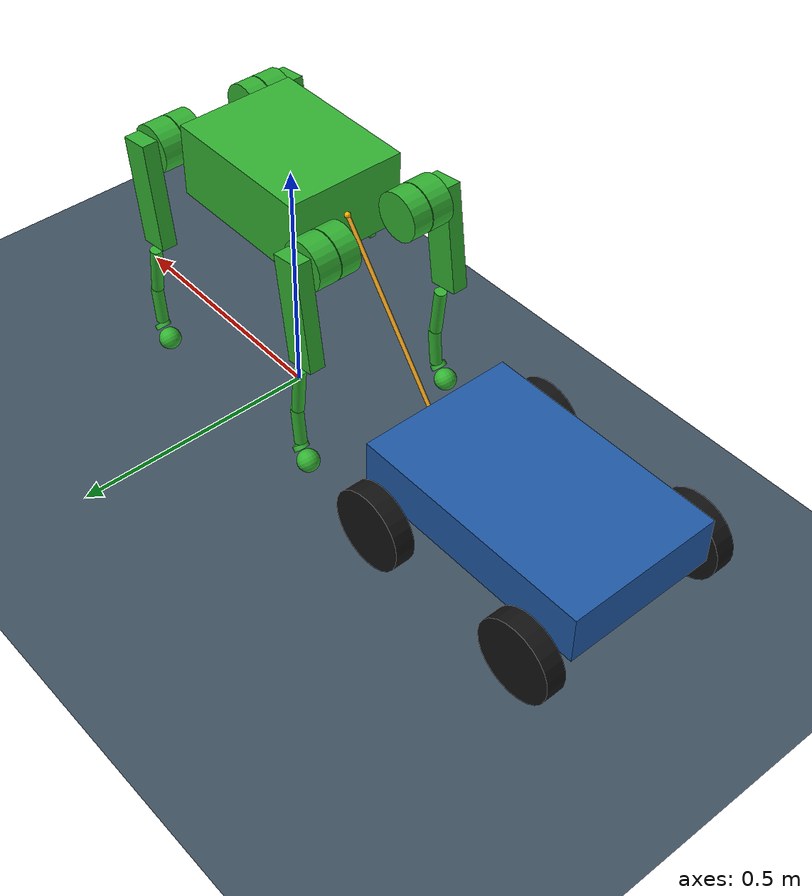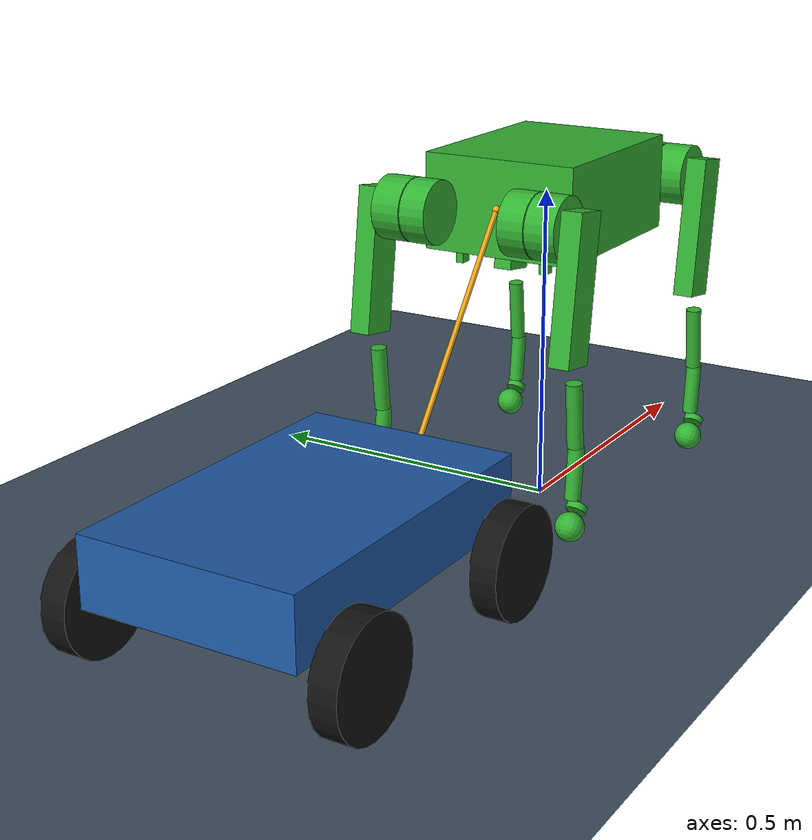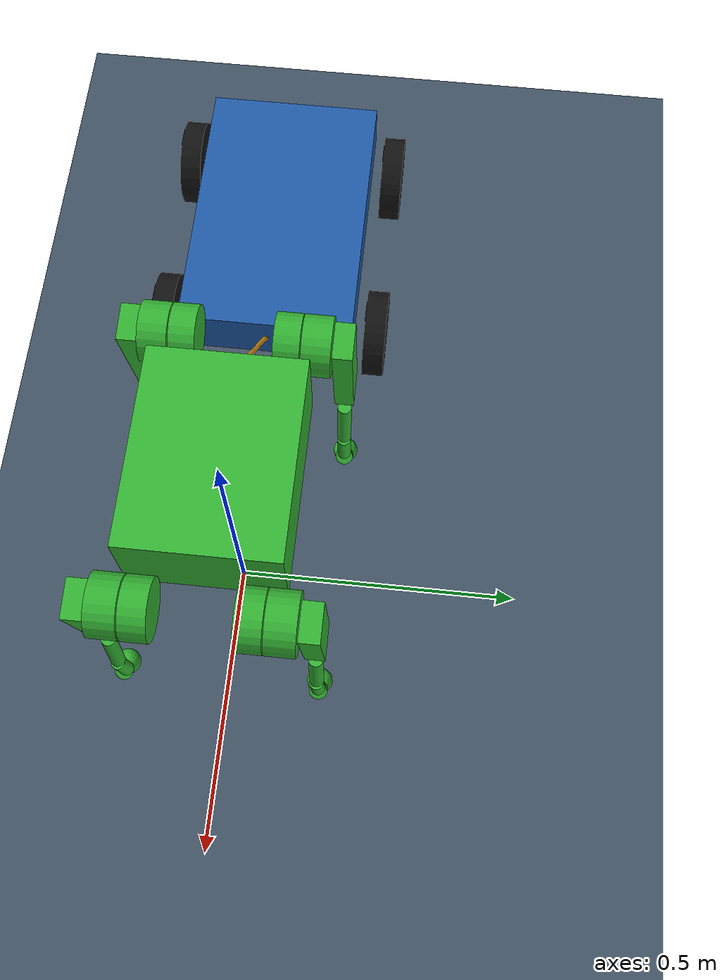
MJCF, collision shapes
<mujoco model="imgo2 towing compliant">
  <include file="imgo2.xml"/>
  <include file="cart.xml"/>
  <statistic center="-0.3 0 0.5" extent="2.5"/>
  <visual>
    <headlight diffuse="0.6 0.6 0.6" ambient="0.3 0.3 0.3" specular="0 0 0"/>
    <global azimuth="-130" elevation="-20"/>
  </visual>
  <worldbody>
    <light pos="0 0 3" dir="0 0 -1" directional="true"/>
    <geom name="floor" type="plane" size="0 0 0.1" rgba="0.25 0.32 0.38 1"
          friction="0.8 0.005 0.0001" contype="1" conaffinity="2"/>
  </worldbody>
  <!-- A unilateral upper-length limit supplies tension only. MuJoCo's negative solref
       selects direct stiffness/damping units; compare transient force to Isaac Lab. -->
  <tendon>
    <spatial name="tow_rope" width="0.004" rgba="0.95 0.65 0.1 1" limited="true"
             range="0 0.8" solreflimit="-4000 -100" solimplimit="0.9 0.95 0.001">
      <site site="tow_robot"/>
      <site site="tow_cart"/>
    </spatial>
  </tendon>
</mujoco>

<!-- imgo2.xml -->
<mujoco model="imgo2">
  <compiler angle="radian" eulerseq="xyz" autolimits="true" inertiafromgeom="false" />
  <option timestep="0.005" cone="elliptic" impratio="100" gravity="0 0 -9.81" />
  <asset>
      <mesh name="mesh_0" file="../meshes/base.STL" scale="1 1 1" />
      <mesh name="mesh_1" file="../meshes/FL_hip.STL" scale="1 1 1" />
      <mesh name="mesh_2" file="../meshes/L_thigh.STL" scale="1 1 1" />
      <mesh name="mesh_3" file="../meshes/L_shank.STL" scale="1 1 1" />
      <mesh name="mesh_4" file="../meshes/foot.STL" scale="1 1 1" />
      <mesh name="mesh_5" file="../meshes/FR_hip.STL" scale="1 1 1" />
      <mesh name="mesh_6" file="../meshes/R_thigh.STL" scale="1 1 1" />
      <mesh name="mesh_7" file="../meshes/R_shank.STL" scale="1 1 1" />
      <mesh name="mesh_8" file="../meshes/RL_hip.STL" scale="1 1 1" />
      <mesh name="mesh_9" file="../meshes/RR_hip.STL" scale="1 1 1" />
    </asset>
  <worldbody>
    <body name="base" pos="0 0 0.5">
          <freejoint name="root" />
          <site name="imu" size="0.005" />
          <!-- Engineering tow point; matches towing_env_cfg.ROBOT_ATTACHMENT_OFFSET_M. -->
          <site name="tow_robot" pos="-0.16 0 0" size="0.006" rgba="1 0.7 0 1" />
          <inertial pos="-0.00002223 -0.00136579 0.00287896" mass="5.53394020" fullinertia="0.03866860 0.10411461 0.12554111 0.00001502 0.00000229 -0.00009602" />
          <geom pos="0 0 0.0" euler="0 0 0" type="mesh" mesh="mesh_0" contype="0" conaffinity="0" group="2" rgba="0.55 0.6 0.65 1" />
          <geom pos="0 0 0" euler="0 0 0" type="box" size="0.1575 0.1215 0.0735" contype="2" conaffinity="1" condim="3" solref="0.005 1" friction="1 0.01 0.01" group="3" rgba="0.2 0.7 0.2 0.3" />
          <geom pos="0.136 0.07 -0.08325" euler="0 0 0" type="box" size="0.009 0.006 0.009" contype="2" conaffinity="1" condim="3" solref="0.005 1" friction="1 0.01 0.01" group="3" rgba="0.2 0.7 0.2 0.3" />
          <geom pos="0.136 -0.07 -0.08325" euler="0 0 0" type="box" size="0.009 0.006 0.009" contype="2" conaffinity="1" condim="3" solref="0.005 1" friction="1 0.01 0.01" group="3" rgba="0.2 0.7 0.2 0.3" />
          <geom pos="-0.136 0.07 -0.08325" euler="0 0 0" type="box" size="0.009 0.006 0.009" contype="2" conaffinity="1" condim="3" solref="0.005 1" friction="1 0.01 0.01" group="3" rgba="0.2 0.7 0.2 0.3" />
          <geom pos="-0.136 -0.07 -0.08325" euler="0 0 0" type="box" size="0.009 0.006 0.009" contype="2" conaffinity="1" condim="3" solref="0.005 1" friction="1 0.01 0.01" group="3" rgba="0.2 0.7 0.2 0.3" />
          <body name="FL_HIP" pos="0.1575 0.067 0.00025" euler="0 0 0">
            <joint name="FL_hip_joint" type="hinge" axis="1 0 0" range="-0.523 0.523" damping="1" armature="0.1" />
            <inertial pos="0.05776150 0.01631658 0.00001927" mass="0.66982842" fullinertia="0.00047165 0.00094023 0.00063679 -0.00002152 -0.00000604 0.00000025" />
            <geom type="mesh" mesh="mesh_1" contype="0" conaffinity="0" group="2" rgba="0.55 0.6 0.65 1" />
            <geom pos="0.063 0.013 0.0" euler="1.5707963267948966 0.0 0.0" type="cylinder" size="0.048 0.0205" contype="2" conaffinity="1" condim="3" solref="0.005 1" friction="1 0.01 0.01" group="3" rgba="0.2 0.7 0.2 0.3" />
            <body name="FL_THIGH" pos="0.063 0.0346 0" euler="0 0 0">
              <joint name="FL_thigh_joint" type="hinge" axis="0 1 0" range="-0.9 2.87" damping="1" armature="0.1" />
              <inertial pos="-0.00429543 0.04392351 -0.03236426" mass="0.96995719" fullinertia="0.00506421 0.00527087 0.00088197 0.00008162 -0.00034748 0.00062882" />
              <geom type="mesh" mesh="mesh_2" contype="0" conaffinity="0" group="2" rgba="0.55 0.6 0.65 1" />
              <geom pos="0.0 0.0235 0.0" euler="1.5707963267948966 0.0 0.0" type="cylinder" size="0.048 0.023" contype="2" conaffinity="1" condim="3" solref="0.005 1" friction="1 0.01 0.01" group="3" rgba="0.2 0.7 0.2 0.3" />
              <geom pos="-0.012 0.0637 -0.08" euler="0.0 0.137 0.0" type="box" size="0.03 0.016 0.11" contype="2" conaffinity="1" condim="3" solref="0.005 1" friction="1 0.01 0.01" group="3" rgba="0.2 0.7 0.2 0.3" />
              <body name="FL_SHANK" pos="0 0.0557 -0.22" euler="0 0 0">
                <joint name="FL_shank_joint" type="hinge" axis="0 1 0" range="-3.0 -0.733" damping="1" armature="0.1" />
                <inertial pos="0.00291507 0.00773582 -0.08768836" mass="0.09561741" fullinertia="0.00054414 0.00055144 0.00001064 0.00000025 0.00000058 0.00000263" />
                <geom type="mesh" mesh="mesh_3" contype="0" conaffinity="0" group="2" rgba="0.55 0.6 0.65 1" />
                <geom pos="0.0 0.008 -0.05" euler="0.0 -0.1 0.0" type="cylinder" size="0.012 0.05" contype="2" conaffinity="1" condim="3" solref="0.005 1" friction="1 0.01 0.01" group="3" rgba="0.2 0.7 0.2 0.3" />
                <geom pos="0.005 0.008 -0.14" euler="0.0 0.1 0.0" type="cylinder" size="0.012 0.04" contype="2" conaffinity="1" condim="3" solref="0.005 1" friction="1 0.01 0.01" group="3" rgba="0.2 0.7 0.2 0.3" />
                <body name="FL_FOOT" pos="0.0 0.00455 -0.206" euler="0.0 0.777 0.0">
                  <inertial pos="-0.00797137 0.00353495 -0.02130484" mass="0.056" fullinertia="9.6e-06 9.6e-06 9.6e-06 0 0 0" />
                  <geom type="mesh" mesh="mesh_4" contype="0" conaffinity="0" group="2" rgba="0.55 0.6 0.65 1" />
                  <geom pos="-0.008 0.0035 0.01" euler="0.0 0.0 0.0" type="cylinder" size="0.0155 0.005" contype="2" conaffinity="1" condim="3" solref="0.005 1" friction="0.4 0.02 0.01" group="3" rgba="0.2 0.7 0.2 0.3" />
                  <geom pos="-0.008 0.0035 -0.02" euler="0.0 0.0 0.0" type="sphere" size="0.022" contype="2" conaffinity="1" condim="3" solref="0.005 1" friction="0.4 0.02 0.01" group="3" rgba="0.2 0.7 0.2 0.3" />
                </body>
              </body>
            </body>
          </body>
          <body name="FR_HIP" pos="0.1575 -0.067 0.00025" euler="0 0 0">
            <joint name="FR_hip_joint" type="hinge" axis="1 0 0" range="-0.523 0.523" damping="1" armature="0.1" />
            <inertial pos="0.05776150 -0.01631658 0.00001927" mass="0.66982842" fullinertia="0.00047165 0.00094023 0.00063679 0.00002152 -0.00000604 -0.00000025" />
            <geom type="mesh" mesh="mesh_5" contype="0" conaffinity="0" group="2" rgba="0.55 0.6 0.65 1" />
            <geom pos="0.063 -0.013 0.0" euler="1.5707963267948966 0.0 0.0" type="cylinder" size="0.048 0.0205" contype="2" conaffinity="1" condim="3" solref="0.005 1" friction="1 0.01 0.01" group="3" rgba="0.2 0.7 0.2 0.3" />
            <body name="FR_THIGH" pos="0.063 -0.0346 0" euler="0 0 0">
              <joint name="FR_thigh_joint" type="hinge" axis="0 1 0" range="-0.9 2.87" damping="1" armature="0.1" />
              <inertial pos="-0.00429543 -0.04392351 -0.03236426" mass="0.96995719" fullinertia="0.00506421 0.00527087 0.00088197 -0.00008162 -0.00034748 -0.00062882" />
              <geom type="mesh" mesh="mesh_6" contype="0" conaffinity="0" group="2" rgba="0.55 0.6 0.65 1" />
              <geom pos="0.0 -0.0235 0.0" euler="1.5707963267948966 0.0 0.0" type="cylinder" size="0.048 0.023" contype="2" conaffinity="1" condim="3" solref="0.005 1" friction="1 0.01 0.01" group="3" rgba="0.2 0.7 0.2 0.3" />
              <geom pos="-0.012 -0.0637 -0.08" euler="0.0 0.137 0.0" type="box" size="0.03 0.016 0.11" contype="2" conaffinity="1" condim="3" solref="0.005 1" friction="1 0.01 0.01" group="3" rgba="0.2 0.7 0.2 0.3" />
              <body name="FR_SHANK" pos="0 -0.0557 -0.22" euler="0 0 0">
                <joint name="FR_shank_joint" type="hinge" axis="0 1 0" range="-3.0 -0.733" damping="1" armature="0.1" />
                <inertial pos="0.00291507 -0.00773582 -0.08768836" mass="0.09561741" fullinertia="0.00054414 0.00055144 0.00001064 -0.00000025 0.00000058 -0.00000263" />
                <geom type="mesh" mesh="mesh_7" contype="0" conaffinity="0" group="2" rgba="0.55 0.6 0.65 1" />
                <geom pos="0.0 -0.008 -0.05" euler="0.0 -0.1 0.0" type="cylinder" size="0.012 0.05" contype="2" conaffinity="1" condim="3" solref="0.005 1" friction="1 0.01 0.01" group="3" rgba="0.2 0.7 0.2 0.3" />
                <geom pos="0.005 -0.008 -0.14" euler="0.0 0.1 0.0" type="cylinder" size="0.012 0.04" contype="2" conaffinity="1" condim="3" solref="0.005 1" friction="1 0.01 0.01" group="3" rgba="0.2 0.7 0.2 0.3" />
                <body name="FR_FOOT" pos="0.0 -0.01145 -0.206" euler="0.0 0.777 0.0">
                  <inertial pos="-0.00797137 0.00353495 -0.02130484" mass="0.056" fullinertia="9.6e-06 9.6e-06 9.6e-06 0 0 0" />
                  <geom type="mesh" mesh="mesh_4" contype="0" conaffinity="0" group="2" rgba="0.55 0.6 0.65 1" />
                  <geom pos="-0.008 -0.0035 0.01" euler="0.0 0.0 0.0" type="cylinder" size="0.0155 0.005" contype="2" conaffinity="1" condim="3" solref="0.005 1" friction="0.4 0.02 0.01" group="3" rgba="0.2 0.7 0.2 0.3" />
                  <geom pos="-0.008 -0.0035 -0.02" euler="0.0 0.0 0.0" type="sphere" size="0.022" contype="2" conaffinity="1" condim="3" solref="0.005 1" friction="0.4 0.02 0.01" group="3" rgba="0.2 0.7 0.2 0.3" />
                </body>
              </body>
            </body>
          </body>
          <body name="RL_HIP" pos="-0.1575 0.067 0.00025" euler="0 0 0">
            <joint name="RL_hip_joint" type="hinge" axis="1 0 0" range="-0.523 0.523" damping="1" armature="0.1" />
            <inertial pos="-0.05776150 0.01631658 0.00001927" mass="0.66982842" fullinertia="0.00047165 0.00094023 0.00063679 0.00002152 0.00000604 0.00000025" />
            <geom type="mesh" mesh="mesh_8" contype="0" conaffinity="0" group="2" rgba="0.55 0.6 0.65 1" />
            <geom pos="-0.063 0.013 0.0" euler="1.5707963267948966 0.0 0.0" type="cylinder" size="0.048 0.0205" contype="2" conaffinity="1" condim="3" solref="0.005 1" friction="1 0.01 0.01" group="3" rgba="0.2 0.7 0.2 0.3" />
            <body name="RL_THIGH" pos="-0.063 0.0346 0" euler="0 0 0">
              <joint name="RL_thigh_joint" type="hinge" axis="0 1 0" range="-0.9 2.87" damping="1" armature="0.1" />
              <inertial pos="0.00429543 0.04392351 -0.03236426" mass="0.96995719" fullinertia="0.00506421 0.00527087 0.00088197 0.00008162 -0.00034748 0.00062882" />
              <geom type="mesh" mesh="mesh_2" contype="0" conaffinity="0" group="2" rgba="0.55 0.6 0.65 1" />
              <geom pos="0.0 0.0235 0.0" euler="1.5707963267948966 0.0 0.0" type="cylinder" size="0.048 0.023" contype="2" conaffinity="1" condim="3" solref="0.005 1" friction="1 0.01 0.01" group="3" rgba="0.2 0.7 0.2 0.3" />
              <geom pos="-0.012 0.0637 -0.08" euler="0.0 0.137 0.0" type="box" size="0.03 0.016 0.11" contype="2" conaffinity="1" condim="3" solref="0.005 1" friction="1 0.01 0.01" group="3" rgba="0.2 0.7 0.2 0.3" />
              <body name="RL_SHANK" pos="0 0.0557 -0.22" euler="0 0 0">
                <joint name="RL_shank_joint" type="hinge" axis="0 1 0" range="-3.0 -0.733" damping="1" armature="0.1" />
                <inertial pos="0.00291507 0.00773582 -0.08768836" mass="0.09561741" fullinertia="0.00054414 0.00055144 0.00001064 0.00000025 0.00000058 0.00000263" />
                <geom type="mesh" mesh="mesh_3" contype="0" conaffinity="0" group="2" rgba="0.55 0.6 0.65 1" />
                <geom pos="0.0 0.008 -0.05" euler="0.0 -0.1 0.0" type="cylinder" size="0.012 0.05" contype="2" conaffinity="1" condim="3" solref="0.005 1" friction="1 0.01 0.01" group="3" rgba="0.2 0.7 0.2 0.3" />
                <geom pos="0.005 0.008 -0.14" euler="0.0 0.1 0.0" type="cylinder" size="0.012 0.04" contype="2" conaffinity="1" condim="3" solref="0.005 1" friction="1 0.01 0.01" group="3" rgba="0.2 0.7 0.2 0.3" />
                <body name="RL_FOOT" pos="0.0 0.00455 -0.206" euler="0.0 0.777 0.0">
                  <inertial pos="-0.00797137 0.00353495 -0.02130484" mass="0.056" fullinertia="9.6e-06 9.6e-06 9.6e-06 0 0 0" />
                  <geom type="mesh" mesh="mesh_4" contype="0" conaffinity="0" group="2" rgba="0.55 0.6 0.65 1" />
                  <geom pos="-0.008 0.0035 0.01" euler="0.0 0.0 0.0" type="cylinder" size="0.0155 0.005" contype="2" conaffinity="1" condim="3" solref="0.005 1" friction="0.4 0.02 0.01" group="3" rgba="0.2 0.7 0.2 0.3" />
                  <geom pos="-0.008 0.0035 -0.02" euler="0.0 0.0 0.0" type="sphere" size="0.022" contype="2" conaffinity="1" condim="3" solref="0.005 1" friction="0.4 0.02 0.01" group="3" rgba="0.2 0.7 0.2 0.3" />
                </body>
              </body>
            </body>
          </body>
          <body name="RR_HIP" pos="-0.1575 -0.067 0.00025" euler="0 0 0">
            <joint name="RR_hip_joint" type="hinge" axis="1 0 0" range="-0.523 0.523" damping="1" armature="0.1" />
            <inertial pos="-0.05776150 -0.01631658 0.00001927" mass="0.66982842" fullinertia="0.00047165 0.00094023 0.00063679 -0.00002152 0.00000604 -0.00000025" />
            <geom type="mesh" mesh="mesh_9" contype="0" conaffinity="0" group="2" rgba="0.55 0.6 0.65 1" />
            <geom pos="-0.063 -0.013 0.0" euler="1.5707963267948966 0.0 0.0" type="cylinder" size="0.048 0.0205" contype="2" conaffinity="1" condim="3" solref="0.005 1" friction="1 0.01 0.01" group="3" rgba="0.2 0.7 0.2 0.3" />
            <body name="RR_THIGH" pos="-0.063 -0.0346 0" euler="0 0 0">
              <joint name="RR_thigh_joint" type="hinge" axis="0 1 0" range="-0.9 2.87" damping="1" armature="0.1" />
              <inertial pos="0.00429543 -0.04392351 -0.03236426" mass="0.96995719" fullinertia="0.00506421 0.00527087 0.00088197 -0.00008162 -0.00034748 -0.00062882" />
              <geom type="mesh" mesh="mesh_6" contype="0" conaffinity="0" group="2" rgba="0.55 0.6 0.65 1" />
              <geom pos="0.0 -0.0235 0.0" euler="1.5707963267948966 0.0 0.0" type="cylinder" size="0.048 0.023" contype="2" conaffinity="1" condim="3" solref="0.005 1" friction="1 0.01 0.01" group="3" rgba="0.2 0.7 0.2 0.3" />
              <geom pos="-0.012 -0.0637 -0.08" euler="0.0 0.137 0.0" type="box" size="0.03 0.016 0.11" contype="2" conaffinity="1" condim="3" solref="0.005 1" friction="1 0.01 0.01" group="3" rgba="0.2 0.7 0.2 0.3" />
              <body name="RR_SHANK" pos="0 -0.0557 -0.22" euler="0 0 0">
                <joint name="RR_shank_joint" type="hinge" axis="0 1 0" range="-3.0 -0.733" damping="1" armature="0.1" />
                <inertial pos="0.00291507 -0.00773582 -0.08768836" mass="0.09561741" fullinertia="0.00054414 0.00055144 0.00001064 -0.00000025 0.00000058 -0.00000263" />
                <geom type="mesh" mesh="mesh_7" contype="0" conaffinity="0" group="2" rgba="0.55 0.6 0.65 1" />
                <geom pos="0.0 -0.008 -0.05" euler="0.0 -0.1 0.0" type="cylinder" size="0.012 0.05" contype="2" conaffinity="1" condim="3" solref="0.005 1" friction="1 0.01 0.01" group="3" rgba="0.2 0.7 0.2 0.3" />
                <geom pos="0.005 -0.008 -0.14" euler="0.0 0.1 0.0" type="cylinder" size="0.012 0.04" contype="2" conaffinity="1" condim="3" solref="0.005 1" friction="1 0.01 0.01" group="3" rgba="0.2 0.7 0.2 0.3" />
                <body name="RR_FOOT" pos="0.0 -0.01145 -0.206" euler="0.0 0.777 0.0">
                  <inertial pos="-0.00797137 0.00353495 -0.02130484" mass="0.056" fullinertia="9.6e-06 9.6e-06 9.6e-06 0 0 0" />
                  <geom type="mesh" mesh="mesh_4" contype="0" conaffinity="0" group="2" rgba="0.55 0.6 0.65 1" />
                  <geom pos="-0.008 -0.0035 0.01" euler="0.0 0.0 0.0" type="cylinder" size="0.0155 0.005" contype="2" conaffinity="1" condim="3" solref="0.005 1" friction="0.4 0.02 0.01" group="3" rgba="0.2 0.7 0.2 0.3" />
                  <geom pos="-0.008 -0.0035 -0.02" euler="0.0 0.0 0.0" type="sphere" size="0.022" contype="2" conaffinity="1" condim="3" solref="0.005 1" friction="0.4 0.02 0.01" group="3" rgba="0.2 0.7 0.2 0.3" />
                </body>
              </body>
            </body>
          </body>
        </body>
  </worldbody>
  <actuator>
      <motor name="FL_hip_joint_motor" joint="FL_hip_joint" ctrlrange="-23.7 23.7" gear="1" />
      <motor name="FL_thigh_joint_motor" joint="FL_thigh_joint" ctrlrange="-23.7 23.7" gear="1" />
      <motor name="FL_shank_joint_motor" joint="FL_shank_joint" ctrlrange="-23.7 23.7" gear="1" />
      <motor name="FR_hip_joint_motor" joint="FR_hip_joint" ctrlrange="-23.7 23.7" gear="1" />
      <motor name="FR_thigh_joint_motor" joint="FR_thigh_joint" ctrlrange="-23.7 23.7" gear="1" />
      <motor name="FR_shank_joint_motor" joint="FR_shank_joint" ctrlrange="-23.7 23.7" gear="1" />
      <motor name="RL_hip_joint_motor" joint="RL_hip_joint" ctrlrange="-23.7 23.7" gear="1" />
      <motor name="RL_thigh_joint_motor" joint="RL_thigh_joint" ctrlrange="-23.7 23.7" gear="1" />
      <motor name="RL_shank_joint_motor" joint="RL_shank_joint" ctrlrange="-23.7 23.7" gear="1" />
      <motor name="RR_hip_joint_motor" joint="RR_hip_joint" ctrlrange="-23.7 23.7" gear="1" />
      <motor name="RR_thigh_joint_motor" joint="RR_thigh_joint" ctrlrange="-23.7 23.7" gear="1" />
      <motor name="RR_shank_joint_motor" joint="RR_shank_joint" ctrlrange="-23.7 23.7" gear="1" />
    </actuator>
  <sensor>
      <jointpos name="FL_hip_joint_jointpos" joint="FL_hip_joint" />
      <jointpos name="FL_thigh_joint_jointpos" joint="FL_thigh_joint" />
      <jointpos name="FL_shank_joint_jointpos" joint="FL_shank_joint" />
      <jointpos name="FR_hip_joint_jointpos" joint="FR_hip_joint" />
      <jointpos name="FR_thigh_joint_jointpos" joint="FR_thigh_joint" />
      <jointpos name="FR_shank_joint_jointpos" joint="FR_shank_joint" />
      <jointpos name="RL_hip_joint_jointpos" joint="RL_hip_joint" />
      <jointpos name="RL_thigh_joint_jointpos" joint="RL_thigh_joint" />
      <jointpos name="RL_shank_joint_jointpos" joint="RL_shank_joint" />
      <jointpos name="RR_hip_joint_jointpos" joint="RR_hip_joint" />
      <jointpos name="RR_thigh_joint_jointpos" joint="RR_thigh_joint" />
      <jointpos name="RR_shank_joint_jointpos" joint="RR_shank_joint" />
      <jointvel name="FL_hip_joint_jointvel" joint="FL_hip_joint" />
      <jointvel name="FL_thigh_joint_jointvel" joint="FL_thigh_joint" />
      <jointvel name="FL_shank_joint_jointvel" joint="FL_shank_joint" />
      <jointvel name="FR_hip_joint_jointvel" joint="FR_hip_joint" />
      <jointvel name="FR_thigh_joint_jointvel" joint="FR_thigh_joint" />
      <jointvel name="FR_shank_joint_jointvel" joint="FR_shank_joint" />
      <jointvel name="RL_hip_joint_jointvel" joint="RL_hip_joint" />
      <jointvel name="RL_thigh_joint_jointvel" joint="RL_thigh_joint" />
      <jointvel name="RL_shank_joint_jointvel" joint="RL_shank_joint" />
      <jointvel name="RR_hip_joint_jointvel" joint="RR_hip_joint" />
      <jointvel name="RR_thigh_joint_jointvel" joint="RR_thigh_joint" />
      <jointvel name="RR_shank_joint_jointvel" joint="RR_shank_joint" />
      <jointactuatorfrc name="FL_hip_joint_jointactuatorfrc" joint="FL_hip_joint" />
      <jointactuatorfrc name="FL_thigh_joint_jointactuatorfrc" joint="FL_thigh_joint" />
      <jointactuatorfrc name="FL_shank_joint_jointactuatorfrc" joint="FL_shank_joint" />
      <jointactuatorfrc name="FR_hip_joint_jointactuatorfrc" joint="FR_hip_joint" />
      <jointactuatorfrc name="FR_thigh_joint_jointactuatorfrc" joint="FR_thigh_joint" />
      <jointactuatorfrc name="FR_shank_joint_jointactuatorfrc" joint="FR_shank_joint" />
      <jointactuatorfrc name="RL_hip_joint_jointactuatorfrc" joint="RL_hip_joint" />
      <jointactuatorfrc name="RL_thigh_joint_jointactuatorfrc" joint="RL_thigh_joint" />
      <jointactuatorfrc name="RL_shank_joint_jointactuatorfrc" joint="RL_shank_joint" />
      <jointactuatorfrc name="RR_hip_joint_jointactuatorfrc" joint="RR_hip_joint" />
      <jointactuatorfrc name="RR_thigh_joint_jointactuatorfrc" joint="RR_thigh_joint" />
      <jointactuatorfrc name="RR_shank_joint_jointactuatorfrc" joint="RR_shank_joint" />
      <!-- 必须挂在 site 上，不能挂 body：body 的 framequat/framelinvel 会再乘上该 body
           的惯量主轴旋转（base 的 iquat ≈ 180° 绕 (1,0,1)/√2），使姿态观测量整体偏转
           90°，策略会把直立误判为"已翻倒"。参考项目同样用 site（base_site）。 -->
      <framequat name="orientation" objtype="site" objname="imu" />
      <gyro name="angular_velocity" site="imu" />
      <!-- 追加在末尾：不影响上面 0..42 的偏移。注意 site 的 framelinvel 是世界系速度，
           训练侧 base_lin_vel 是体系速度；C++ 目前不读它，要用时（README AMP-06）
           在 GetState/RunModel 里读并做 QuatRotateInverse(base_quat, v) 变换。 -->
    <framelinvel name="base_lin_vel" objtype="site" objname="imu" />
  </sensor>
</mujoco>

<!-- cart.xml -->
<mujoco model="passive cart">
  <!-- Cart dimensions, masses and inertias mirror cart/cart.urdf. The rope is in the scene. -->
  <worldbody>
    <body name="cart_base" pos="-0.65 0 0.18">
      <freejoint name="cart_root"/>
      <inertial pos="0 0 0" mass="8.4" diaginertia="0.07868 0.182 0.24668"/>
      <geom name="cart_deck" type="box" size="0.25 0.16 0.05" rgba="0.12 0.35 0.65 1"
            contype="3" conaffinity="3" friction="0.8 0.005 0.0001"/>
      <site name="tow_cart" pos="0.25 0 0" size="0.006" rgba="1 0.7 0 1"/>
      <body name="cart_wheel_fl" pos="0.18 0.20 -0.07">
        <joint name="cart_wheel_fl_joint" type="hinge" axis="0 1 0" damping="0.016"/>
        <inertial pos="0 0 0" mass="0.4" diaginertia="0.0006933333333333334 0.00128 0.0006933333333333334"/>
        <geom name="cart_wheel_fl_geom" type="cylinder" size="0.08 0.02" euler="1.5707963267948966 0 0"
              rgba="0.07 0.07 0.07 1" contype="3" conaffinity="3" friction="0.8 0.005 0.0001"/>
      </body>
      <body name="cart_wheel_fr" pos="0.18 -0.20 -0.07">
        <joint name="cart_wheel_fr_joint" type="hinge" axis="0 1 0" damping="0.016"/>
        <inertial pos="0 0 0" mass="0.4" diaginertia="0.0006933333333333334 0.00128 0.0006933333333333334"/>
        <geom name="cart_wheel_fr_geom" type="cylinder" size="0.08 0.02" euler="1.5707963267948966 0 0"
              rgba="0.07 0.07 0.07 1" contype="3" conaffinity="3" friction="0.8 0.005 0.0001"/>
      </body>
      <body name="cart_wheel_rl" pos="-0.18 0.20 -0.07">
        <joint name="cart_wheel_rl_joint" type="hinge" axis="0 1 0" damping="0.016"/>
        <inertial pos="0 0 0" mass="0.4" diaginertia="0.0006933333333333334 0.00128 0.0006933333333333334"/>
        <geom name="cart_wheel_rl_geom" type="cylinder" size="0.08 0.02" euler="1.5707963267948966 0 0"
              rgba="0.07 0.07 0.07 1" contype="3" conaffinity="3" friction="0.8 0.005 0.0001"/>
      </body>
      <body name="cart_wheel_rr" pos="-0.18 -0.20 -0.07">
        <joint name="cart_wheel_rr_joint" type="hinge" axis="0 1 0" damping="0.016"/>
        <inertial pos="0 0 0" mass="0.4" diaginertia="0.0006933333333333334 0.00128 0.0006933333333333334"/>
        <geom name="cart_wheel_rr_geom" type="cylinder" size="0.08 0.02" euler="1.5707963267948966 0 0"
              rgba="0.07 0.07 0.07 1" contype="3" conaffinity="3" friction="0.8 0.005 0.0001"/>
      </body>
    </body>
  </worldbody>
</mujoco>
